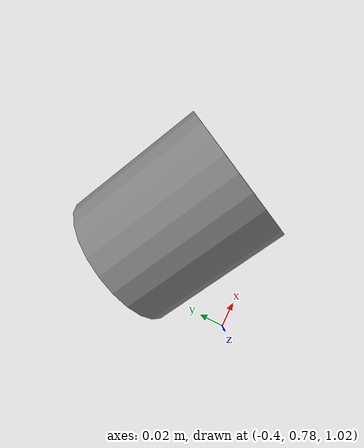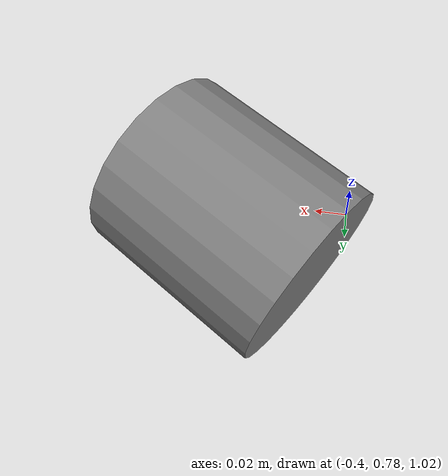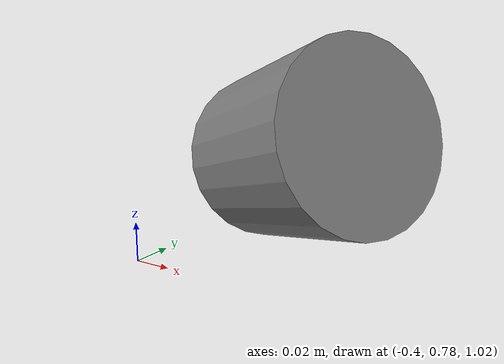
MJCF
<?xml version="1.0" encoding="UTF-8"?>
<mujoco model="test">
  <worldbody>
    <body name="body" pos="-0.3381798416337627 0.849225910060298 1.0733928298882789" quat="0.5823856420908603 -0.1497468351892326 0.5976328857015435 -0.5303185676225859">
      <geom type="cylinder" name="cylinder" size="0.05 0.05 0.05"/>
    </body>
  </worldbody>
</mujoco>
